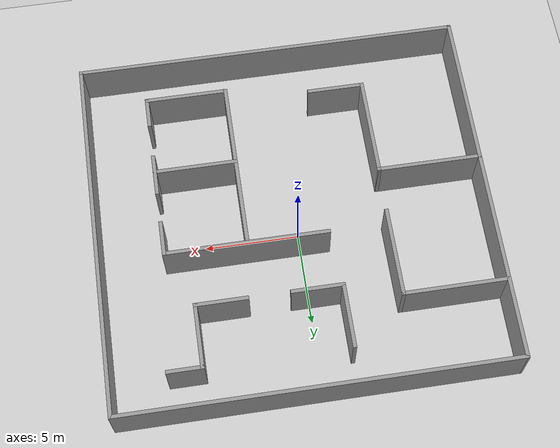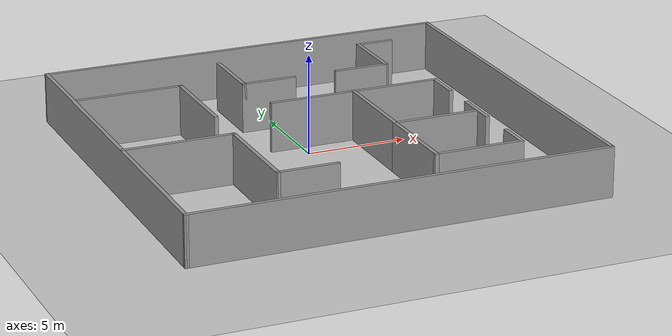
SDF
<sdf version="1.4">
 <world name="default">
  <light name="sun" type="directional">
   <pose>0.000000 0.000000 10.000000 0.000000 0.000000 0.000000</pose>
   <diffuse>0.800000 0.800000 0.800000 1.000000</diffuse>
   <specular>0.100000 0.100000 0.100000 1.000000</specular>
   <attenuation>
    <range>1000.000000</range>
    <constant>0.900000</constant>
    <linear>0.010000</linear>
    <quadratic>0.001000</quadratic>
   </attenuation>
   <direction>-0.500000 0.500000 -1.000000</direction>
  </light>
  <model name="ground_plane">
   <static>1</static>
   <link name="link">
    <collision name="collision">
     <geometry>
      <plane><normal>0.000000 0.000000 1.000000</normal><size>100.000000 100.000000</size></plane>
     </geometry>
     <surface><friction><ode><mu>100.000000</mu><mu2>50.000000</mu2></ode></friction></surface>
    </collision>
    <visual name="visual">
     <cast_shadows>0</cast_shadows>
     <geometry>
      <plane><normal>0.000000 0.000000 1.000000</normal><size>100.000000 100.000000</size></plane>
     </geometry>
     <material>
      <script><uri>file://media/materials/scripts/gazebo.material</uri><name>Gazebo/Grey</name></script>
     </material>
    </visual>
    <velocity_decay><linear>0.000000</linear><angular>0.000000</angular></velocity_decay>
   </link>
  </model>
  <physics type="ode">
   <max_step_size>0.001000</max_step_size>
   <real_time_factor>1.000000</real_time_factor>
   <real_time_update_rate>1000.000000</real_time_update_rate>
   <gravity>0.000000 0.000000 -9.800000</gravity>
  </physics>
  <scene>
   <ambient>0.200000 0.200000 0.200000 1.000000</ambient>
   <background>0.700000 0.700000 0.700000 1.000000</background>
   <shadows>1</shadows>
  </scene>
  <model name="teste_model">
   <link name="Wall_0">
    <collision name="Wall_0_Collision">
     <geometry><box><size>20.855800 0.200000 2.500000</size></box></geometry>
     <pose>0.000000 0.000000 1.250000 0.000000 0.000000 0.000000</pose>
    </collision>
    <visual name="Wall_0_Visual">
     <pose>0.000000 0.000000 1.250000 0.000000 0.000000 0.000000</pose>
     <geometry><box><size>20.855800 0.200000 2.500000</size></box></geometry>
     <material>
      <script><uri>file://media/materials/scripts/gazebo.material</uri><name>Gazebo/Grey</name></script>
     </material>
    </visual>
    <velocity_decay><linear>0.000000</linear><angular>0.000000</angular></velocity_decay>
    <pose>0.243499 9.606710 0.000000 0.000000 0.000000 0.000000</pose>
   </link>
   <link name="Wall_1">
    <collision name="Wall_1_Collision">
     <geometry><box><size>19.920000 0.200000 2.500000</size></box></geometry>
     <pose>0.000000 0.000000 1.250000 0.000000 0.000000 0.000000</pose>
    </collision>
    <visual name="Wall_1_Visual">
     <pose>0.000000 0.000000 1.250000 0.000000 0.000000 0.000000</pose>
     <geometry><box><size>19.920000 0.200000 2.500000</size></box></geometry>
     <material>
      <script><uri>file://media/materials/scripts/gazebo.material</uri><name>Gazebo/Grey</name></script>
     </material>
    </visual>
    <velocity_decay><linear>0.000000</linear><angular>0.000000</angular></velocity_decay>
    <pose>10.571400 -0.253315 0.000000 0.000000 0.000000 -1.570800</pose>
   </link>
   <link name="Wall_11">
    <collision name="Wall_11_Collision">
     <geometry><box><size>2.848370 0.200000 2.500000</size></box></geometry>
     <pose>0.000000 0.000000 1.250000 0.000000 0.000000 0.000000</pose>
    </collision>
    <visual name="Wall_11_Visual">
     <pose>0.000000 0.000000 1.250000 0.000000 0.000000 0.000000</pose>
     <geometry><box><size>2.848370 0.200000 2.500000</size></box></geometry>
     <material>
      <script><uri>file://media/materials/scripts/gazebo.material</uri><name>Gazebo/Grey</name></script>
     </material>
    </visual>
    <velocity_decay><linear>0.000000</linear><angular>0.000000</angular></velocity_decay>
    <pose>4.546130 4.480920 0.000000 0.000000 0.000000 0.000000</pose>
   </link>
   <link name="Wall_12">
    <collision name="Wall_12_Collision">
     <geometry><box><size>3.490400 0.200000 2.500000</size></box></geometry>
     <pose>0.000000 0.000000 1.250000 0.000000 0.000000 0.000000</pose>
    </collision>
    <visual name="Wall_12_Visual">
     <pose>0.000000 0.000000 1.250000 0.000000 0.000000 0.000000</pose>
     <geometry><box><size>3.490400 0.200000 2.500000</size></box></geometry>
     <material>
      <script><uri>file://media/materials/scripts/gazebo.material</uri><name>Gazebo/Grey</name></script>
     </material>
    </visual>
    <velocity_decay><linear>0.000000</linear><angular>0.000000</angular></velocity_decay>
    <pose>5.870320 6.126120 0.000000 0.000000 0.000000 1.570800</pose>
   </link>
   <link name="Wall_13">
    <collision name="Wall_13_Collision">
     <geometry><box><size>1.938830 0.200000 2.500000</size></box></geometry>
     <pose>0.000000 0.000000 1.250000 0.000000 0.000000 0.000000</pose>
    </collision>
    <visual name="Wall_13_Visual">
     <pose>0.000000 0.000000 1.250000 0.000000 0.000000 0.000000</pose>
     <geometry><box><size>1.938830 0.200000 2.500000</size></box></geometry>
     <material>
      <script><uri>file://media/materials/scripts/gazebo.material</uri><name>Gazebo/Grey</name></script>
     </material>
    </visual>
    <velocity_decay><linear>0.000000</linear><angular>0.000000</angular></velocity_decay>
    <pose>6.739740 7.771330 0.000000 0.000000 0.000000 0.000000</pose>
   </link>
   <link name="Wall_15">
    <collision name="Wall_15_Collision">
     <geometry><box><size>8.787150 0.200000 2.500000</size></box></geometry>
     <pose>0.000000 0.000000 1.250000 0.000000 0.000000 0.000000</pose>
    </collision>
    <visual name="Wall_15_Visual">
     <pose>0.000000 0.000000 1.250000 0.000000 0.000000 0.000000</pose>
     <geometry><box><size>8.787150 0.200000 2.500000</size></box></geometry>
     <material>
      <script><uri>file://media/materials/scripts/gazebo.material</uri><name>Gazebo/Grey</name></script>
     </material>
    </visual>
    <velocity_decay><linear>0.000000</linear><angular>0.000000</angular></velocity_decay>
    <pose>2.834060 1.431280 0.000000 0.000000 0.000000 0.000000</pose>
   </link>
   <link name="Wall_16">
    <collision name="Wall_16_Collision">
     <geometry><box><size>1.938830 0.200000 2.500000</size></box></geometry>
     <pose>0.000000 0.000000 1.250000 0.000000 0.000000 0.000000</pose>
    </collision>
    <visual name="Wall_16_Visual">
     <pose>0.000000 0.000000 1.250000 0.000000 0.000000 0.000000</pose>
     <geometry><box><size>1.938830 0.200000 2.500000</size></box></geometry>
     <material>
      <script><uri>file://media/materials/scripts/gazebo.material</uri><name>Gazebo/Grey</name></script>
     </material>
    </visual>
    <velocity_decay><linear>0.000000</linear><angular>0.000000</angular></velocity_decay>
    <pose>7.127630 0.561863 0.000000 0.000000 0.000000 -1.570800</pose>
   </link>
   <link name="Wall_18">
    <collision name="Wall_18_Collision">
     <geometry><box><size>2.313350 0.200000 2.500000</size></box></geometry>
     <pose>0.000000 0.000000 1.250000 0.000000 0.000000 0.000000</pose>
    </collision>
    <visual name="Wall_18_Visual">
     <pose>0.000000 0.000000 1.250000 0.000000 0.000000 0.000000</pose>
     <geometry><box><size>2.313350 0.200000 2.500000</size></box></geometry>
     <material>
      <script><uri>file://media/materials/scripts/gazebo.material</uri><name>Gazebo/Grey</name></script>
     </material>
    </visual>
    <velocity_decay><linear>0.000000</linear><angular>0.000000</angular></velocity_decay>
    <pose>7.127630 -3.183310 0.000000 0.000000 0.000000 -1.570800</pose>
   </link>
   <link name="Wall_2">
    <collision name="Wall_2_Collision">
     <geometry><box><size>21.004400 0.200000 2.500000</size></box></geometry>
     <pose>0.000000 0.000000 1.250000 0.000000 0.000000 0.000000</pose>
    </collision>
    <visual name="Wall_2_Visual">
     <pose>0.000000 0.000000 1.250000 0.000000 0.000000 0.000000</pose>
     <geometry><box><size>21.004400 0.200000 2.500000</size></box></geometry>
     <material>
      <script><uri>file://media/materials/scripts/gazebo.material</uri><name>Gazebo/Grey</name></script>
     </material>
    </visual>
    <velocity_decay><linear>0.000000</linear><angular>0.000000</angular></velocity_decay>
    <pose>0.169166 -10.113300 0.000000 0.000000 0.000000 3.141590</pose>
   </link>
   <link name="Wall_20">
    <collision name="Wall_20_Collision">
     <geometry><box><size>1.724820 0.200000 2.500000</size></box></geometry>
     <pose>0.000000 0.000000 1.250000 0.000000 0.000000 0.000000</pose>
    </collision>
    <visual name="Wall_20_Visual">
     <pose>0.000000 0.000000 1.250000 0.000000 0.000000 0.000000</pose>
     <geometry><box><size>1.724820 0.200000 2.500000</size></box></geometry>
     <material>
      <script><uri>file://media/materials/scripts/gazebo.material</uri><name>Gazebo/Grey</name></script>
     </material>
    </visual>
    <velocity_decay><linear>0.000000</linear><angular>0.000000</angular></velocity_decay>
    <pose>7.127630 -7.035490 0.000000 0.000000 0.000000 -1.570800</pose>
   </link>
   <link name="Wall_21">
    <collision name="Wall_21_Collision">
     <geometry><box><size>4.533700 0.200000 2.500000</size></box></geometry>
     <pose>0.000000 0.000000 1.250000 0.000000 0.000000 0.000000</pose>
    </collision>
    <visual name="Wall_21_Visual">
     <pose>0.000000 0.000000 1.250000 0.000000 0.000000 0.000000</pose>
     <geometry><box><size>4.533700 0.200000 2.500000</size></box></geometry>
     <material>
      <script><uri>file://media/materials/scripts/gazebo.material</uri><name>Gazebo/Grey</name></script>
     </material>
    </visual>
    <velocity_decay><linear>0.000000</linear><angular>0.000000</angular></velocity_decay>
    <pose>4.960780 -7.797900 0.000000 0.000000 0.000000 3.141590</pose>
   </link>
   <link name="Wall_22">
    <collision name="Wall_22_Collision">
     <geometry><box><size>4.640710 0.200000 2.500000</size></box></geometry>
     <pose>0.000000 0.000000 1.250000 0.000000 0.000000 0.000000</pose>
    </collision>
    <visual name="Wall_22_Visual">
     <pose>0.000000 0.000000 1.250000 0.000000 0.000000 0.000000</pose>
     <geometry><box><size>4.640710 0.200000 2.500000</size></box></geometry>
     <material>
      <script><uri>file://media/materials/scripts/gazebo.material</uri><name>Gazebo/Grey</name></script>
     </material>
    </visual>
    <velocity_decay><linear>0.000000</linear><angular>0.000000</angular></velocity_decay>
    <pose>2.793930 -5.577550 0.000000 0.000000 0.000000 1.570800</pose>
   </link>
   <link name="Wall_23">
    <collision name="Wall_23_Collision">
     <geometry><box><size>4.533700 0.200000 2.500000</size></box></geometry>
     <pose>0.000000 0.000000 1.250000 0.000000 0.000000 0.000000</pose>
    </collision>
    <visual name="Wall_23_Visual">
     <pose>0.000000 0.000000 1.250000 0.000000 0.000000 0.000000</pose>
     <geometry><box><size>4.533700 0.200000 2.500000</size></box></geometry>
     <material>
      <script><uri>file://media/materials/scripts/gazebo.material</uri><name>Gazebo/Grey</name></script>
     </material>
    </visual>
    <velocity_decay><linear>0.000000</linear><angular>0.000000</angular></velocity_decay>
    <pose>4.960780 -3.357190 0.000000 0.000000 0.000000 0.000000</pose>
   </link>
   <link name="Wall_25">
    <collision name="Wall_25_Collision">
     <geometry><box><size>4.934970 0.200000 2.500000</size></box></geometry>
     <pose>0.000000 0.000000 1.250000 0.000000 0.000000 0.000000</pose>
    </collision>
    <visual name="Wall_25_Visual">
     <pose>0.000000 0.000000 1.250000 0.000000 0.000000 0.000000</pose>
     <geometry><box><size>4.934970 0.200000 2.500000</size></box></geometry>
     <material>
      <script><uri>file://media/materials/scripts/gazebo.material</uri><name>Gazebo/Grey</name></script>
     </material>
    </visual>
    <velocity_decay><linear>0.000000</linear><angular>0.000000</angular></velocity_decay>
    <pose>2.793930 -0.962959 0.000000 0.000000 0.000000 1.570800</pose>
   </link>
   <link name="Wall_27">
    <collision name="Wall_27_Collision">
     <geometry><box><size>5.630500 0.200000 2.500000</size></box></geometry>
     <pose>0.000000 0.000000 1.250000 0.000000 0.000000 0.000000</pose>
    </collision>
    <visual name="Wall_27_Visual">
     <pose>0.000000 0.000000 1.250000 0.000000 0.000000 0.000000</pose>
     <geometry><box><size>5.630500 0.200000 2.500000</size></box></geometry>
     <material>
      <script><uri>file://media/materials/scripts/gazebo.material</uri><name>Gazebo/Grey</name></script>
     </material>
    </visual>
    <velocity_decay><linear>0.000000</linear><angular>0.000000</angular></velocity_decay>
    <pose>-7.411670 -1.752120 0.000000 0.000000 0.000000 0.000000</pose>
   </link>
   <link name="Wall_28">
    <collision name="Wall_28_Collision">
     <geometry><box><size>5.523500 0.200000 2.500000</size></box></geometry>
     <pose>0.000000 0.000000 1.250000 0.000000 0.000000 0.000000</pose>
    </collision>
    <visual name="Wall_28_Visual">
     <pose>0.000000 0.000000 1.250000 0.000000 0.000000 0.000000</pose>
     <geometry><box><size>5.523500 0.200000 2.500000</size></box></geometry>
     <material>
      <script><uri>file://media/materials/scripts/gazebo.material</uri><name>Gazebo/Grey</name></script>
     </material>
    </visual>
    <velocity_decay><linear>0.000000</linear><angular>0.000000</angular></velocity_decay>
    <pose>-4.696420 -4.413870 0.000000 0.000000 0.000000 -1.570800</pose>
   </link>
   <link name="Wall_29">
    <collision name="Wall_29_Collision">
     <geometry><box><size>3.115890 0.200000 2.500000</size></box></geometry>
     <pose>0.000000 0.000000 1.250000 0.000000 0.000000 0.000000</pose>
    </collision>
    <visual name="Wall_29_Visual">
     <pose>0.000000 0.000000 1.250000 0.000000 0.000000 0.000000</pose>
     <geometry><box><size>3.115890 0.200000 2.500000</size></box></geometry>
     <material>
      <script><uri>file://media/materials/scripts/gazebo.material</uri><name>Gazebo/Grey</name></script>
     </material>
    </visual>
    <velocity_decay><linear>0.000000</linear><angular>0.000000</angular></velocity_decay>
    <pose>-3.238480 -7.075620 0.000000 0.000000 0.000000 0.000000</pose>
   </link>
   <link name="Wall_3">
    <collision name="Wall_3_Collision">
     <geometry><box><size>19.920600 0.200000 2.500000</size></box></geometry>
     <pose>0.000000 0.000000 1.250000 0.000000 0.000000 0.000000</pose>
    </collision>
    <visual name="Wall_3_Visual">
     <pose>0.000000 0.000000 1.250000 0.000000 0.000000 0.000000</pose>
     <geometry><box><size>19.920600 0.200000 2.500000</size></box></geometry>
     <material>
      <script><uri>file://media/materials/scripts/gazebo.material</uri><name>Gazebo/Grey</name></script>
     </material>
    </visual>
    <velocity_decay><linear>0.000000</linear><angular>0.000000</angular></velocity_decay>
    <pose>-10.158700 -0.253315 0.000000 0.000000 0.000000 1.563260</pose>
   </link>
   <link name="Wall_5">
    <collision name="Wall_5_Collision">
     <geometry><box><size>5.630500 0.200000 2.500000</size></box></geometry>
     <pose>0.000000 0.000000 1.250000 0.000000 0.000000 0.000000</pose>
    </collision>
    <visual name="Wall_5_Visual">
     <pose>0.000000 0.000000 1.250000 0.000000 0.000000 0.000000</pose>
     <geometry><box><size>5.630500 0.200000 2.500000</size></box></geometry>
     <material>
      <script><uri>file://media/materials/scripts/gazebo.material</uri><name>Gazebo/Grey</name></script>
     </material>
    </visual>
    <velocity_decay><linear>0.000000</linear><angular>0.000000</angular></velocity_decay>
    <pose>-7.358170 5.417210 0.000000 0.000000 0.000000 0.000000</pose>
   </link>
   <link name="Wall_6">
    <collision name="Wall_6_Collision">
     <geometry><box><size>4.881470 0.200000 2.500000</size></box></geometry>
     <pose>0.000000 0.000000 1.250000 0.000000 0.000000 0.000000</pose>
    </collision>
    <visual name="Wall_6_Visual">
     <pose>0.000000 0.000000 1.250000 0.000000 0.000000 0.000000</pose>
     <geometry><box><size>4.881470 0.200000 2.500000</size></box></geometry>
     <material>
      <script><uri>file://media/materials/scripts/gazebo.material</uri><name>Gazebo/Grey</name></script>
     </material>
    </visual>
    <velocity_decay><linear>0.000000</linear><angular>0.000000</angular></velocity_decay>
    <pose>-4.642920 3.076480 0.000000 0.000000 0.000000 -1.570800</pose>
   </link>
   <link name="Wall_8">
    <collision name="Wall_8_Collision">
     <geometry><box><size>3.517150 0.200000 2.500000</size></box></geometry>
     <pose>0.000000 0.000000 1.250000 0.000000 0.000000 0.000000</pose>
    </collision>
    <visual name="Wall_8_Visual">
     <pose>0.000000 0.000000 1.250000 0.000000 0.000000 0.000000</pose>
     <geometry><box><size>3.517150 0.200000 2.500000</size></box></geometry>
     <material>
      <script><uri>file://media/materials/scripts/gazebo.material</uri><name>Gazebo/Grey</name></script>
     </material>
    </visual>
    <velocity_decay><linear>0.000000</linear><angular>0.000000</angular></velocity_decay>
    <pose>-1.727030 6.139500 0.000000 0.000000 0.000000 -1.570800</pose>
   </link>
   <link name="Wall_9">
    <collision name="Wall_9_Collision">
     <geometry><box><size>2.821620 0.200000 2.500000</size></box></geometry>
     <pose>0.000000 0.000000 1.250000 0.000000 0.000000 0.000000</pose>
    </collision>
    <visual name="Wall_9_Visual">
     <pose>0.000000 0.000000 1.250000 0.000000 0.000000 0.000000</pose>
     <geometry><box><size>2.821620 0.200000 2.500000</size></box></geometry>
     <material>
      <script><uri>file://media/materials/scripts/gazebo.material</uri><name>Gazebo/Grey</name></script>
     </material>
    </visual>
    <velocity_decay><linear>0.000000</linear><angular>0.000000</angular></velocity_decay>
    <pose>-0.416222 4.480920 0.000000 0.000000 0.000000 0.000000</pose>
   </link>
   <static>1</static>
   <pose>0.000000 -0.411069 0.000000 0.000000 0.000000 0.000000</pose>
  </model>
 </world>
</sdf>
